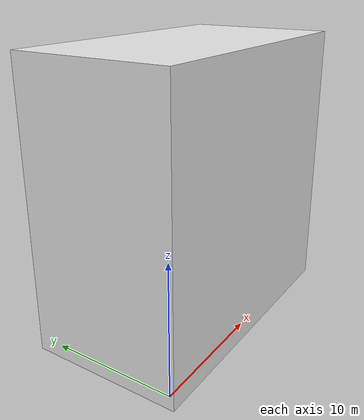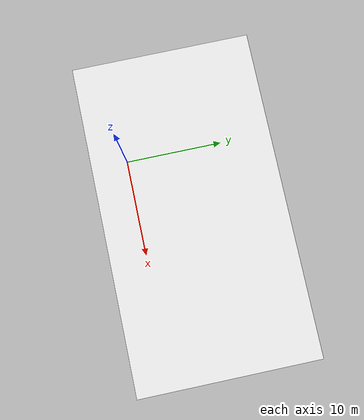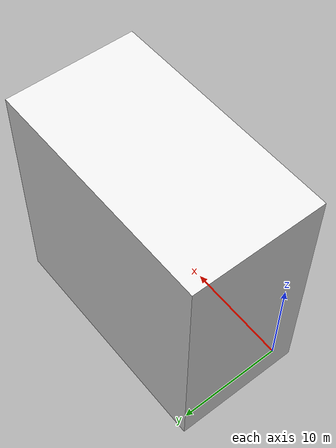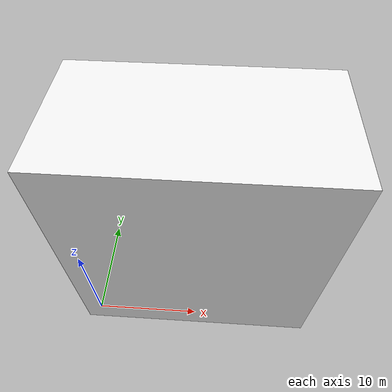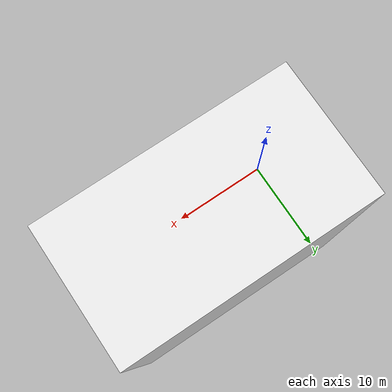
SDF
<?xml version="1.0"?>
<sdf version="1.9">
  <world name="minimal">
    <!-- 画面を明るく、シャドウはオフでもOK -->
    <scene>
      <ambient>0.8 0.8 0.8 1</ambient>
      <background>0.85 0.85 0.9 1</background>
      <shadows>false</shadows>
    </scene>
    <gravity>0 0 -9.81</gravity>

    <!-- 室内を均一に照らす点光源（sunは無しのまま） -->
    <light type="point" name="room_light_center">
      <pose>0 0 18 0 0 0</pose>
      <diffuse>1 1 1 1</diffuse>
      <specular>0.2 0.2 0.2 1</specular>
      <attenuation>
        <range>200</range>
        <constant>1.0</constant>
        <linear>0.02</linear>
        <quadratic>0.001</quadratic>
      </attenuation>
      <cast_shadows>false</cast_shadows>
    </light>
    <light type="point" name="room_light_x">
      <pose>12 0 12 0 0 0</pose>
      <diffuse>1 1 1 1</diffuse>
      <specular>0.2 0.2 0.2 1</specular>
      <attenuation>
        <range>200</range>
        <constant>1.0</constant>
        <linear>0.02</linear>
        <quadratic>0.001</quadratic>
      </attenuation>
      <cast_shadows>false</cast_shadows>
    </light>
    <light type="point" name="room_light_y">
      <pose>0 12 12 0 0 0</pose>
      <diffuse>1 1 1 1</diffuse>
      <specular>0.2 0.2 0.2 1</specular>
      <attenuation>
        <range>200</range>
        <constant>1.0</constant>
        <linear>0.02</linear>
        <quadratic>0.001</quadratic>
      </attenuation>
      <cast_shadows>false</cast_shadows>
    </light>

    <!-- 部屋メッシュ（姿勢・拡大は元のまま） -->
    <model name="world_demo_mesh">
      <static>true</static>
      <!-- x y z roll pitch yaw -->
      <pose>0 0 1 1.57079632679 0 0</pose>
      <link name="mesh_link">
        <visual name="mesh_vis">
          <geometry>
            <mesh>
              <!-- そのままでも可。安定させるなら file:// を付けても良い -->
              <uri>file:///home/morita/g4_ros_ws/src/g4_bringup/worlds/world_demo.obj</uri>
              <scale>100 100 100</scale>
            </mesh>
          </geometry>
          <material>
            <!-- ここだけ“見やすさ”調整 -->
            <ambient>0.9 0.9 0.9 1</ambient>
            <diffuse>0.9 0.9 0.9 1</diffuse>
            <emissive>0.2 0.2 0.2 1</emissive>
            <double_sided>1</double_sided>
          </material>
          <cast_shadows>false</cast_shadows>
        </visual>
        <collision name="mesh_col">
          <geometry>
            <mesh>
              <uri>file:///home/morita/g4_ros_ws/src/g4_bringup/worlds/world_demo.obj</uri>
              <scale>100 100 100</scale>
            </mesh>
          </geometry>
        </collision>
      </link>
    </model>

  </world>
</sdf>
